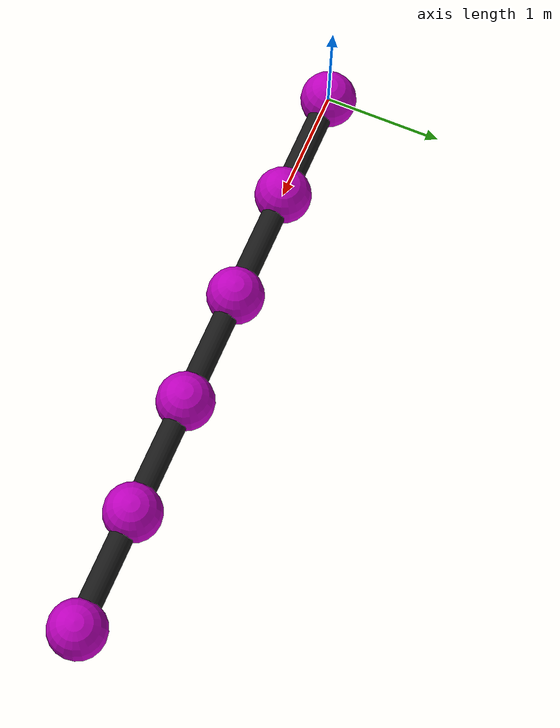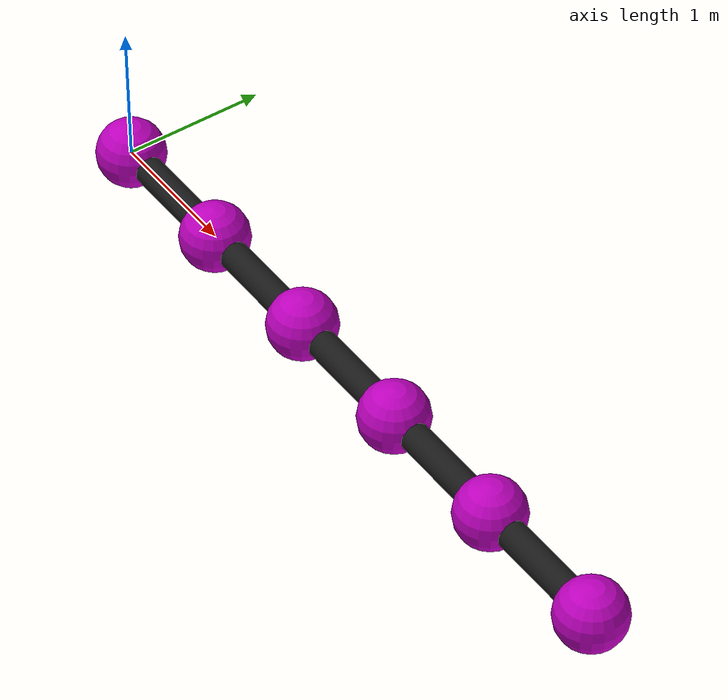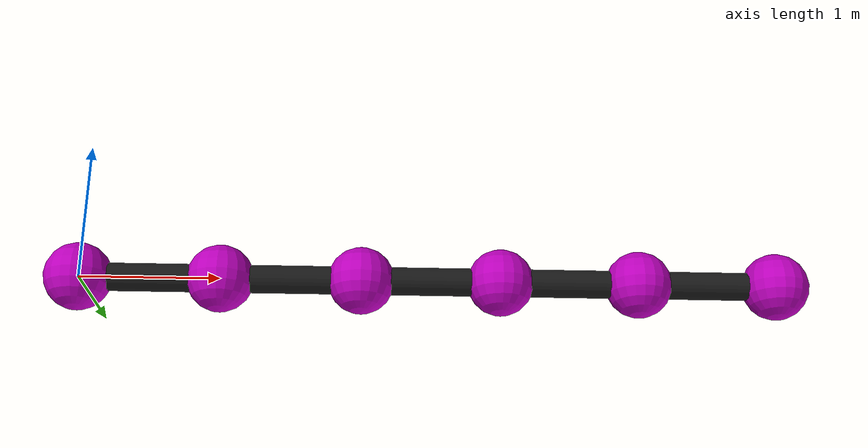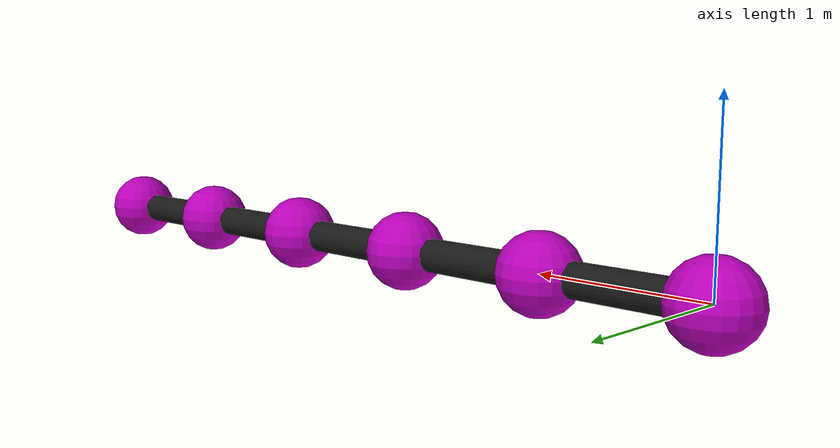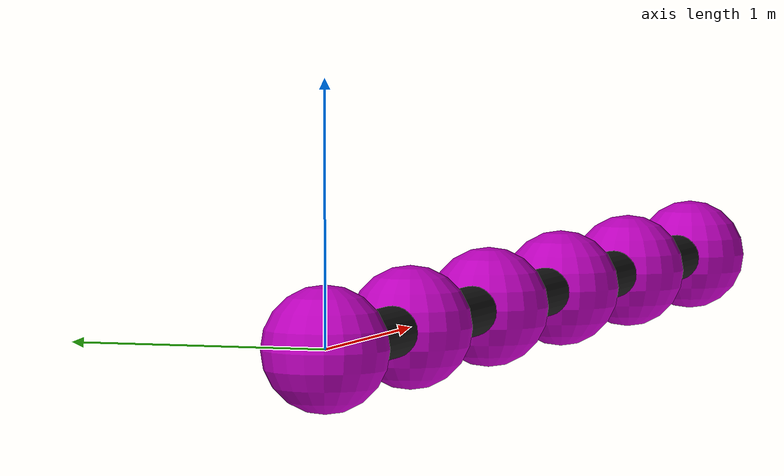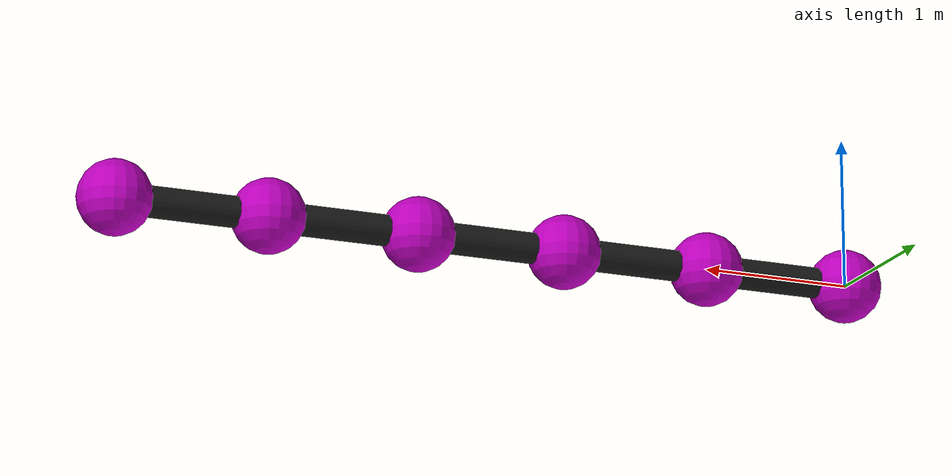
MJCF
<mujoco model="5DOF_Planar_Robot">

  <compiler inertiafromgeom = "auto" angle = "radian"/>

   <!-- (semi-) implicit Euler method was used for the integrator with time step of 0.1ms -->
	<option timestep='0.001' iterations='50' integrator='Euler' collision='all' gravity="0 0 0"/>

  <asset>
    <!-- Texture of the surrounding sky box
         setting everything as white-ish color for better visualization -->
     <texture type="skybox"
              builtin="flat"
              rgb1="1 1 1"
              rgb2="1 1 1"
              width="100"
              height="100"/>

     <!-- Joint and Limb Color -->
		 <material name="JointColor" 		 rgba="0.75 0.0 0.75 1" />
		 <material name="LimbColor" 		 rgba="0.1 0.1 0.1 1" />

  </asset>

  <worldbody>

		<body name='body1' pos='0 0 0' euler='0 0 0'>
      <joint name='joint1' ref='0' type='hinge' stiffness='0' pos='0 0 0' axis='0 0 1' />
			<inertial pos='0.5 0 0' mass='1' diaginertia='1 1 1'/>
			<geom name='geom1' type='sphere' pos='0 0 0' material='JointColor' size='0.24' mass='0'/>
			<geom type='cylinder' fromto='0 0 0 1 0 0'   material='LimbColor'  size='0.10' mass='0'/>
			<body name='body2' pos='1 0 0' euler='0 0 0'>
        <joint name='joint2' ref='0' type='hinge' stiffness='0' pos='0 0 0' axis='0 0 1'/>
        <inertial pos='0.5 0 0' mass='1' diaginertia='1 1 1'/>
        <geom name='geom2' type='sphere' pos='0 0 0' material='JointColor' size='0.24' mass='0'/>
				<geom type='cylinder' fromto='0 0 0 1 0 0'   material='LimbColor'  size='0.10' mass='0'/>
        <body name='body3' pos='1 0 0' euler='0 0 0'>
          <joint name='joint3' ref='0' type='hinge' stiffness='0' pos='0 0 0' axis='0 0 1'/>
          <inertial pos='0.5 0 0' mass='1' diaginertia='1 1 1'/>
          <geom name='geom3' type='sphere' pos='0 0 0' material='JointColor' size='0.24' mass='0'/>
          <geom type='cylinder' fromto='0 0 0 1 0 0'   material='LimbColor'  size='0.10' mass='0'/>
          <body name='body4' pos='1 0 0' euler='0 0 0'>
            <joint name='joint4' ref='0' type='hinge' stiffness='0' pos='0 0 0' axis='0 0 1'/>
            <inertial pos='0.5 0 0' mass='1' diaginertia='1 1 1'/>
            <geom name='geom4' type='sphere' pos='0 0 0' material='JointColor' size='0.24' mass='0'/>
            <geom type='cylinder' fromto='0 0 0 1 0 0'   material='LimbColor'  size='0.10' mass='0'/>
            <body name='body5' pos='1 0 0' euler='0 0 0'>
              <joint name='joint5' ref='0' type='hinge' stiffness='0' pos='0 0 0' axis='0 0 1'/>
              <inertial pos='0.5 0 0' mass='1' diaginertia='1 1 1'/>
              <geom name='geom5' type='sphere' pos='0 0 0' material='JointColor' size='0.24' mass='0'/>
              <geom type='cylinder' fromto='0 0 0 1 0 0'   material='LimbColor'  size='0.10' mass='0'/>
              <geom name='geom6' type='sphere' pos='1 0 0' material='JointColor' size='0.24' mass='0'/>
              <site name="site_end_effector" pos='1 0 0'/>
            </body>
          </body>
        </body>
      </body>
  </body>

  </worldbody>

  <actuator>
		  <motor joint='joint1' name='motor_joint1' forcelimited='false'/>
		  <motor joint='joint2' name='motor_joint2' forcelimited='false'/>
      <motor joint='joint3' name='motor_joint3' forcelimited='false'/>
      <motor joint='joint4' name='motor_joint4' forcelimited='false'/>
      <motor joint='joint5' name='motor_joint5' forcelimited='false'/>
  </actuator>

</mujoco>
